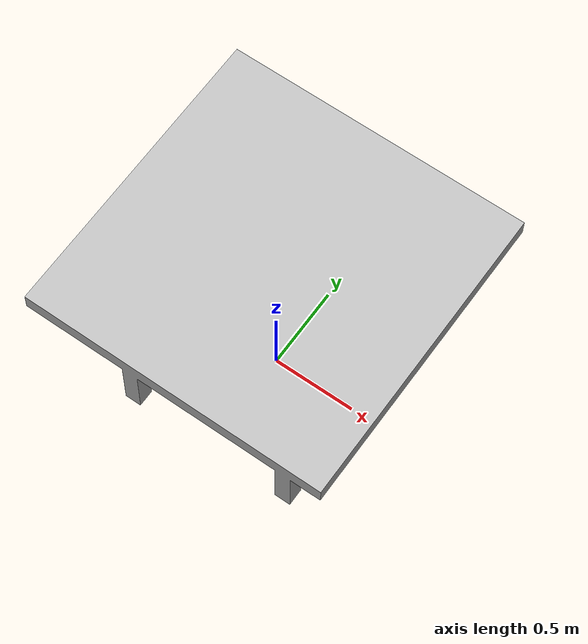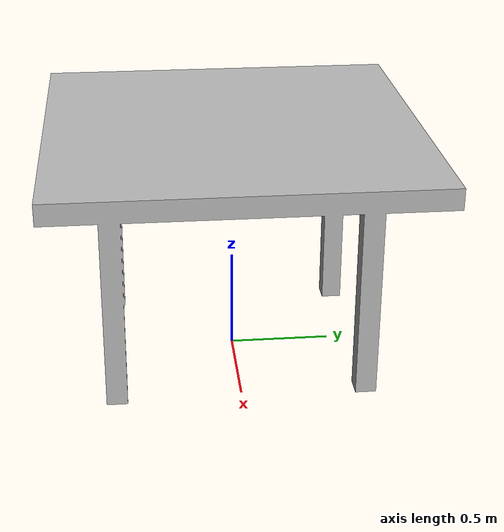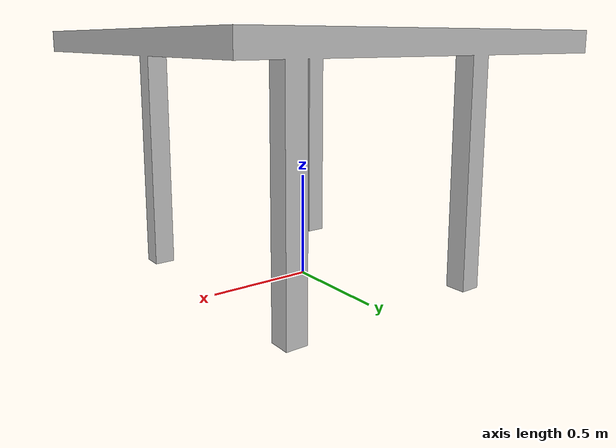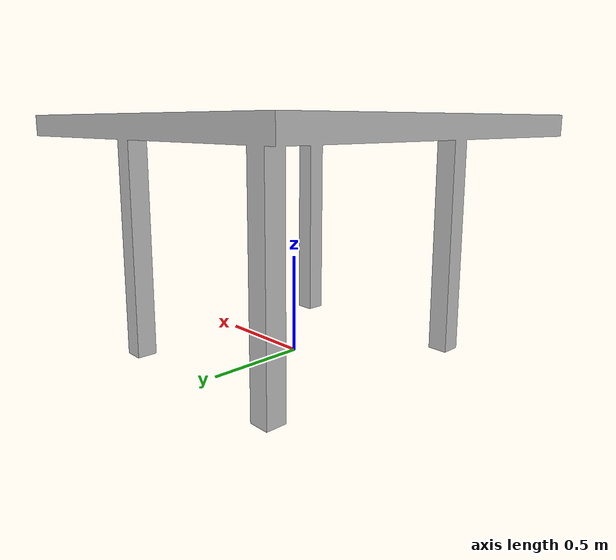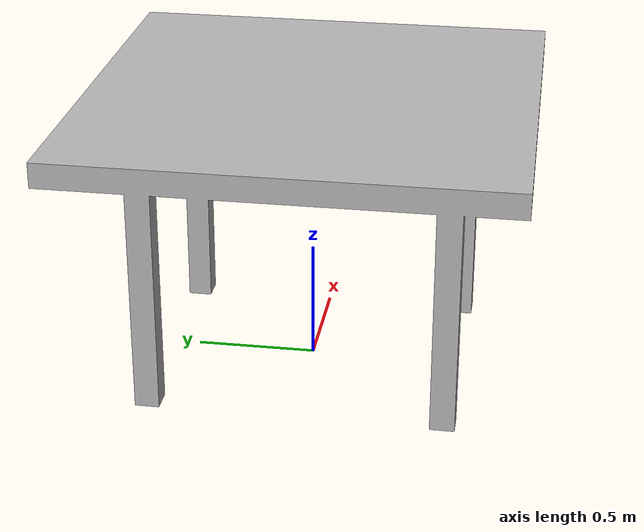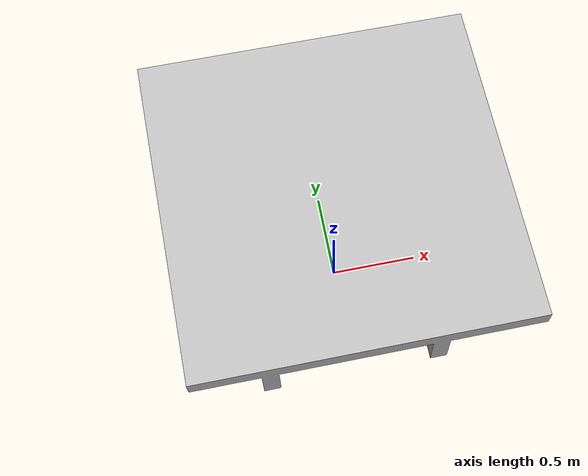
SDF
<sdf version="1.7">
  <model name="table" canonical_link="table_link">
    <link name="table_link">
      <visual name="visual">
        <pose>0 0 0 1.5708 0 0</pose>
        <geometry>
          <mesh>
            <uri>model://table/meshes/table.obj</uri>
            <scale>1 1 1</scale>
          </mesh>
        </geometry>
      </visual>

      <collision name="collision">
        <pose>0 0 0 1.5708 0 0</pose>
        <geometry>
          <mesh>
            <uri>model://table/meshes/table.obj</uri>
            <scale>1 1 1</scale>
          </mesh>
        </geometry>
      </collision>
    </link>
  </model>
</sdf>
